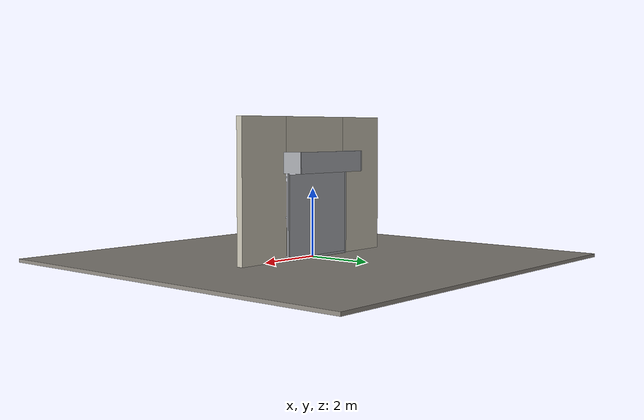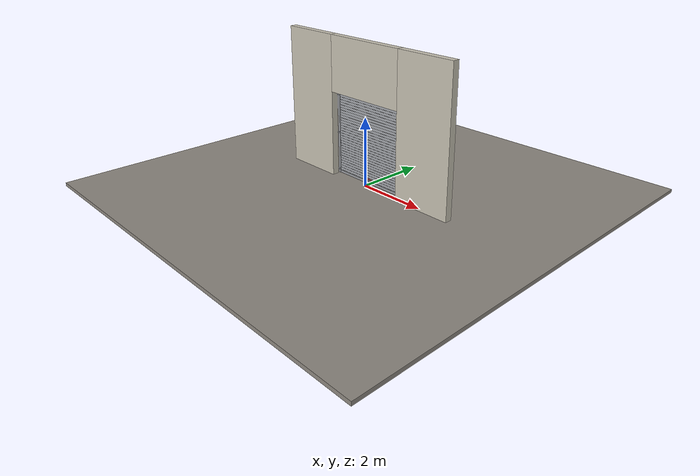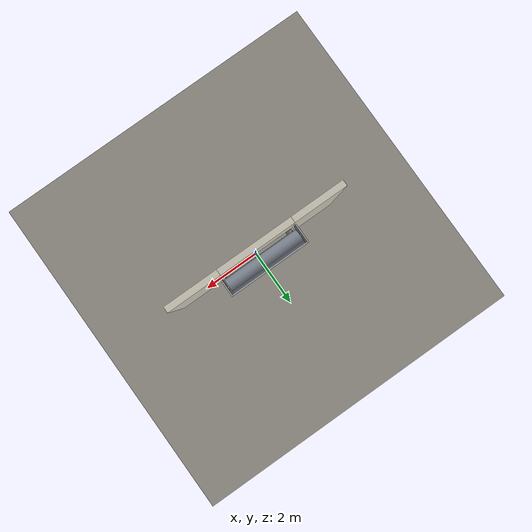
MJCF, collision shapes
<?xml version="1.0" ?>
<mujoco model="db0718_rollup_full">
  <compiler angle="radian" meshdir="../../hardware" texturedir="../../textures" autolimits="true" inertiafromgeom="false"/>
  <option timestep="0.002" integrator="implicitfast" cone="elliptic" impratio="10" noslip_iterations="3">
    <flag multiccd="enable"/>
  </option>
  <size memory="16M"/>
  <default>
    <geom condim="4" solref="0.005 1" solimp="0.95 0.99 0.001"/>
    <joint solreflimit="0.005 1" solimplimit="0.95 0.99 0.001"/>
    <tendon solreflimit="0.005 1"/>
    <equality solref="0.002 1"/>
  </default>
  <visual>
    <headlight ambient="0.4 0.4 0.4" diffuse="0.7 0.7 0.7" specular="0.2 0.2 0.2"/>
    <quality shadowsize="4096"/>
    <map znear="0.01" zfar="60"/>
  </visual>
  <asset>
    <mesh name="pull_bdc5e965ab" file="pull_bdc5e965ab.obj"/>
    <material name="mat_floor" rgba="0.55 0.53 0.5 1" specular="0.2" shininess="0.15" reflectance="0"/>
    <material name="mat_wall" rgba="0.78 0.76 0.7 1" specular="0.2" shininess="0.1" reflectance="0"/>
    <material name="mat_frame" rgba="0.45 0.48 0.52 1" specular="0.32" shininess="0.6" reflectance="0.08"/>
    <material name="mat_track" rgba="0.65 0.66 0.68 1" specular="0.74" shininess="0.5" reflectance="0.36"/>
    <material name="mat_curtain" rgba="0.65 0.66 0.68 1" specular="0.74" shininess="0.5" reflectance="0.36"/>
    <material name="mat_slat_line" rgba="0.25 0.25 0.25 1" specular="0.2" shininess="0.3" reflectance="0"/>
    <material name="mat_astragal" rgba="0.09 0.09 0.1 1" specular="0.2" shininess="0.1" reflectance="0"/>
    <material name="mat_op_black_matte_metal" rgba="0.05 0.05 0.05 1" specular="0.38" shininess="0.3" reflectance="0.12"/>
    <texture name="skybox" type="skybox" builtin="gradient" rgb1="0.6 0.7 0.85" rgb2="0.9 0.92 0.95" width="256" height="256"/>
  </asset>
  <worldbody>
    <light name="sun" pos="1.5 -2.5 4" dir="-0.3 0.5 -0.8" directional="true" diffuse="0.8 0.8 0.8" specular="0.3 0.3 0.3" castshadow="true"/>
    <light name="fill" pos="-1.5 2.5 3" dir="0.3 -0.5 -0.7" directional="true" diffuse="0.35 0.35 0.4" castshadow="false"/>
    <camera name="robot_view" pos="0 -2.959375 2.073625" xyaxes="1 0 0 0 0.26963 0.962964" fovy="52"/>
    <camera name="far_view" pos="0 2.959375 2.073625" xyaxes="-1 0 0 0 -0.26963 0.962964" fovy="52"/>
    <camera name="iso" pos="2.249125 -2.485875 2.547125" xyaxes="0.741536 0.670913 0 -0.242917 0.268487 0.932151" fovy="46"/>
    <camera name="detail_handle" pos="0.25 -0.9665 0.51" xyaxes="0.975133 0.221621 0 -0.065674 0.288965 0.955084" fovy="38"/>
    <geom name="floor" type="box" size="6 6 0.05" pos="0 0 -0.05" material="mat_floor" group="0" contype="1" conaffinity="1" friction="0.8 0.005 0.0001" density="2400"/>
    <geom name="wall_left" type="box" size="0.8775 0.1 2.045" pos="-2.1225 0 2.045" material="mat_wall" group="0" contype="1" conaffinity="1" friction="0.6 0.005 0.0001" density="800"/>
    <geom name="wall_right" type="box" size="0.8775 0.1 2.045" pos="2.1225 0 2.045" material="mat_wall" group="0" contype="1" conaffinity="1" friction="0.6 0.005 0.0001" density="800"/>
    <geom name="wall_header" type="box" size="1.245 0.1 0.8" pos="0 0 3.29" material="mat_wall" group="0" contype="1" conaffinity="1" friction="0.6 0.005 0.0001" density="800"/>
    <geom name="guide_l" type="box" size="0.03 0.025 1.245" pos="-1.255 0.185 1.245" material="mat_track" group="0" contype="1" conaffinity="1" friction="0.6 0.005 0.0001" density="7850"/>
    <geom name="guide_r" type="box" size="0.03 0.025 1.245" pos="1.255 0.185 1.245" material="mat_track" group="0" contype="1" conaffinity="1" friction="0.6 0.005 0.0001" density="7850"/>
    <geom name="guide_bracket_l_0" type="box" size="0.028 0.034 0.02" pos="-1.255 0.13 0.12" material="mat_track" group="1" contype="0" conaffinity="0" density="7850"/>
    <geom name="guide_bracket_l_1" type="box" size="0.028 0.034 0.02" pos="-1.255 0.13 1.245" material="mat_track" group="1" contype="0" conaffinity="0" density="7850"/>
    <geom name="guide_bracket_l_2" type="box" size="0.028 0.034 0.02" pos="-1.255 0.13 2.37" material="mat_track" group="1" contype="0" conaffinity="0" density="7850"/>
    <geom name="guide_bracket_r_0" type="box" size="0.028 0.034 0.02" pos="1.255 0.13 0.12" material="mat_track" group="1" contype="0" conaffinity="0" density="7850"/>
    <geom name="guide_bracket_r_1" type="box" size="0.028 0.034 0.02" pos="1.255 0.13 1.245" material="mat_track" group="1" contype="0" conaffinity="0" density="7850"/>
    <geom name="guide_bracket_r_2" type="box" size="0.028 0.034 0.02" pos="1.255 0.13 2.37" material="mat_track" group="1" contype="0" conaffinity="0" density="7850"/>
    <geom name="coil_drum" type="cylinder" size="0.25 1.27" pos="0 0.463 2.79" quat="0.707107 0 0.707107 0" material="mat_frame" group="1" contype="0" conaffinity="0" density="300"/>
    <geom name="coil_shaft" type="cylinder" size="0.022 1.35" pos="0 0.463 2.79" quat="0.707107 0 0.707107 0" material="mat_track" group="1" contype="0" conaffinity="0" density="7850"/>
    <geom name="hood_front" type="box" size="1.34 0.02 0.3" pos="0 0.725 2.79" material="mat_track" group="1" contype="0" conaffinity="0" density="7850"/>
    <geom name="hood_end_l" type="box" size="0.02 0.3225 0.3" pos="-1.34 0.4225 2.79" material="mat_track" group="1" contype="0" conaffinity="0" density="7850"/>
    <geom name="hood_end_r" type="box" size="0.02 0.3225 0.3" pos="1.34 0.4225 2.79" material="mat_track" group="1" contype="0" conaffinity="0" density="7850"/>
    <site name="approach_point" pos="0 -2 0" quat="1 0 0 0" size="0.05" rgba="0.2 0.9 0.2 0.5" group="4"/>
    <site name="goal_point" pos="0 2 0" quat="1 0 0 0" size="0.05" rgba="0.2 0.9 0.2 0.5" group="4"/>
    <site name="door_plane_center" pos="0 0 1.245" quat="1 0 0 0" size="0.02" rgba="0.2 0.9 0.2 0.5" group="4"/>
    <body name="curtain" pos="0 0 0">
      <inertial pos="0 0.184533 1.009299" mass="37.888608" quat="0.500161 0.499839 0.499839 -0.500161" diaginertia="18.595031541 23.360654142 41.952833951"/>
      <joint name="curtain_slide" type="slide" axis="0 0 1" limited="true" range="0 2.39" damping="3.89443" frictionloss="59.449651" stiffness="41.989772" springref="7.966667" armature="0.5"/>
      <geom name="curtain_slab" type="box" size="1.22 0.0015 1.22" pos="0 0.185 1.23" material="mat_curtain" group="0" contype="1" conaffinity="1" friction="0.42 0.005 0.0001" density="1"/>
      <geom name="slat_line_1" type="box" size="1.22 0.001 0.003" pos="0 0.1825 0.08625" material="mat_slat_line" group="1" contype="0" conaffinity="0" density="1"/>
      <geom name="slat_line_2" type="box" size="1.22 0.001 0.003" pos="0 0.1825 0.1625" material="mat_slat_line" group="1" contype="0" conaffinity="0" density="1"/>
      <geom name="slat_line_3" type="box" size="1.22 0.001 0.003" pos="0 0.1825 0.23875" material="mat_slat_line" group="1" contype="0" conaffinity="0" density="1"/>
      <geom name="slat_line_4" type="box" size="1.22 0.001 0.003" pos="0 0.1825 0.315" material="mat_slat_line" group="1" contype="0" conaffinity="0" density="1"/>
      <geom name="slat_line_5" type="box" size="1.22 0.001 0.003" pos="0 0.1825 0.39125" material="mat_slat_line" group="1" contype="0" conaffinity="0" density="1"/>
      <geom name="slat_line_6" type="box" size="1.22 0.001 0.003" pos="0 0.1825 0.4675" material="mat_slat_line" group="1" contype="0" conaffinity="0" density="1"/>
      <geom name="slat_line_7" type="box" size="1.22 0.001 0.003" pos="0 0.1825 0.54375" material="mat_slat_line" group="1" contype="0" conaffinity="0" density="1"/>
      <geom name="slat_line_8" type="box" size="1.22 0.001 0.003" pos="0 0.1825 0.62" material="mat_slat_line" group="1" contype="0" conaffinity="0" density="1"/>
      <geom name="slat_line_9" type="box" size="1.22 0.001 0.003" pos="0 0.1825 0.69625" material="mat_slat_line" group="1" contype="0" conaffinity="0" density="1"/>
      <geom name="slat_line_10" type="box" size="1.22 0.001 0.003" pos="0 0.1825 0.7725" material="mat_slat_line" group="1" contype="0" conaffinity="0" density="1"/>
      <geom name="slat_line_11" type="box" size="1.22 0.001 0.003" pos="0 0.1825 0.84875" material="mat_slat_line" group="1" contype="0" conaffinity="0" density="1"/>
      <geom name="slat_line_12" type="box" size="1.22 0.001 0.003" pos="0 0.1825 0.925" material="mat_slat_line" group="1" contype="0" conaffinity="0" density="1"/>
      <geom name="slat_line_13" type="box" size="1.22 0.001 0.003" pos="0 0.1825 1.00125" material="mat_slat_line" group="1" contype="0" conaffinity="0" density="1"/>
      <geom name="slat_line_14" type="box" size="1.22 0.001 0.003" pos="0 0.1825 1.0775" material="mat_slat_line" group="1" contype="0" conaffinity="0" density="1"/>
      <geom name="slat_line_15" type="box" size="1.22 0.001 0.003" pos="0 0.1825 1.15375" material="mat_slat_line" group="1" contype="0" conaffinity="0" density="1"/>
      <geom name="slat_line_16" type="box" size="1.22 0.001 0.003" pos="0 0.1825 1.23" material="mat_slat_line" group="1" contype="0" conaffinity="0" density="1"/>
      <geom name="slat_line_17" type="box" size="1.22 0.001 0.003" pos="0 0.1825 1.30625" material="mat_slat_line" group="1" contype="0" conaffinity="0" density="1"/>
      <geom name="slat_line_18" type="box" size="1.22 0.001 0.003" pos="0 0.1825 1.3825" material="mat_slat_line" group="1" contype="0" conaffinity="0" density="1"/>
      <geom name="slat_line_19" type="box" size="1.22 0.001 0.003" pos="0 0.1825 1.45875" material="mat_slat_line" group="1" contype="0" conaffinity="0" density="1"/>
      <geom name="slat_line_20" type="box" size="1.22 0.001 0.003" pos="0 0.1825 1.535" material="mat_slat_line" group="1" contype="0" conaffinity="0" density="1"/>
      <geom name="slat_line_21" type="box" size="1.22 0.001 0.003" pos="0 0.1825 1.61125" material="mat_slat_line" group="1" contype="0" conaffinity="0" density="1"/>
      <geom name="slat_line_22" type="box" size="1.22 0.001 0.003" pos="0 0.1825 1.6875" material="mat_slat_line" group="1" contype="0" conaffinity="0" density="1"/>
      <geom name="slat_line_23" type="box" size="1.22 0.001 0.003" pos="0 0.1825 1.76375" material="mat_slat_line" group="1" contype="0" conaffinity="0" density="1"/>
      <geom name="slat_line_24" type="box" size="1.22 0.001 0.003" pos="0 0.1825 1.84" material="mat_slat_line" group="1" contype="0" conaffinity="0" density="1"/>
      <geom name="slat_line_25" type="box" size="1.22 0.001 0.003" pos="0 0.1825 1.91625" material="mat_slat_line" group="1" contype="0" conaffinity="0" density="1"/>
      <geom name="slat_line_26" type="box" size="1.22 0.001 0.003" pos="0 0.1825 1.9925" material="mat_slat_line" group="1" contype="0" conaffinity="0" density="1"/>
      <geom name="slat_line_27" type="box" size="1.22 0.001 0.003" pos="0 0.1825 2.06875" material="mat_slat_line" group="1" contype="0" conaffinity="0" density="1"/>
      <geom name="slat_line_28" type="box" size="1.22 0.001 0.003" pos="0 0.1825 2.145" material="mat_slat_line" group="1" contype="0" conaffinity="0" density="1"/>
      <geom name="slat_line_29" type="box" size="1.22 0.001 0.003" pos="0 0.1825 2.22125" material="mat_slat_line" group="1" contype="0" conaffinity="0" density="1"/>
      <geom name="slat_line_30" type="box" size="1.22 0.001 0.003" pos="0 0.1825 2.2975" material="mat_slat_line" group="1" contype="0" conaffinity="0" density="1"/>
      <geom name="slat_line_31" type="box" size="1.22 0.001 0.003" pos="0 0.1825 2.37375" material="mat_slat_line" group="1" contype="0" conaffinity="0" density="1"/>
      <geom name="bottom_bar" type="box" size="1.22 0.0165 0.03" pos="0 0.185 0.042" material="mat_track" group="0" contype="1" conaffinity="1" friction="0.6 0.005 0.0001" density="7850"/>
      <geom name="bottom_astragal" type="box" size="1.22 0.0115 0.006" pos="0 0.185 0.006" material="mat_astragal" group="0" contype="1" conaffinity="1" friction="0.6 0.005 0.0001" density="1100"/>
      <geom name="lift_handle_n" type="mesh" mesh="pull_bdc5e965ab" pos="0 0.1835 0.16" quat="0.707107 0.707107 0 0" material="mat_op_black_matte_metal" group="1" contype="0" conaffinity="0" density="3000"/>
      <geom name="lift_handle_col_n" type="box" size="0.1 0.006 0.015" pos="0 0.1335 0.16" material="mat_op_black_matte_metal" group="3" contype="1" conaffinity="1" rgba="0.8 0.3 0.3 0.25" friction="0.6 0.005 0.0001" density="3000"/>
      <site name="lift_handle_grip_n" pos="0 0.1335 0.16" quat="1 0 0 0" size="0.012" rgba="0.2 0.9 0.2 0.5" group="4"/>
    </body>
  </worldbody>
  <sensor>
    <jointpos name="curtain_slide_pos" joint="curtain_slide"/>
    <jointvel name="curtain_slide_vel" joint="curtain_slide"/>
  </sensor>
</mujoco>
